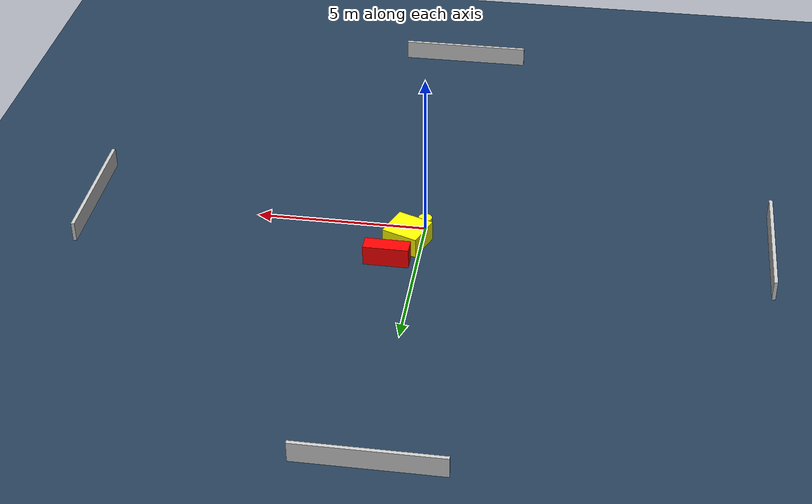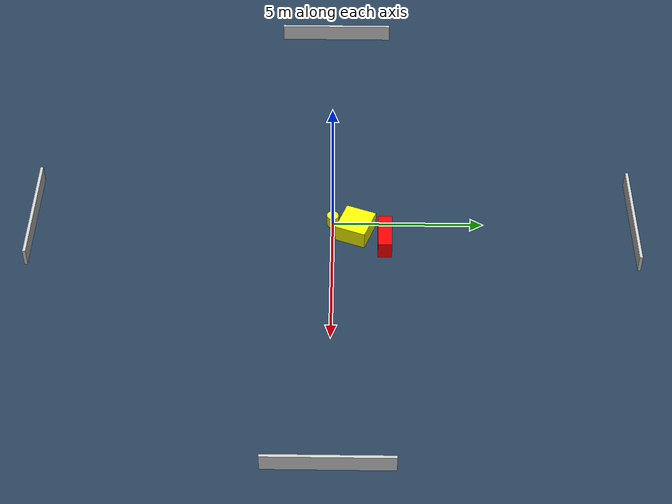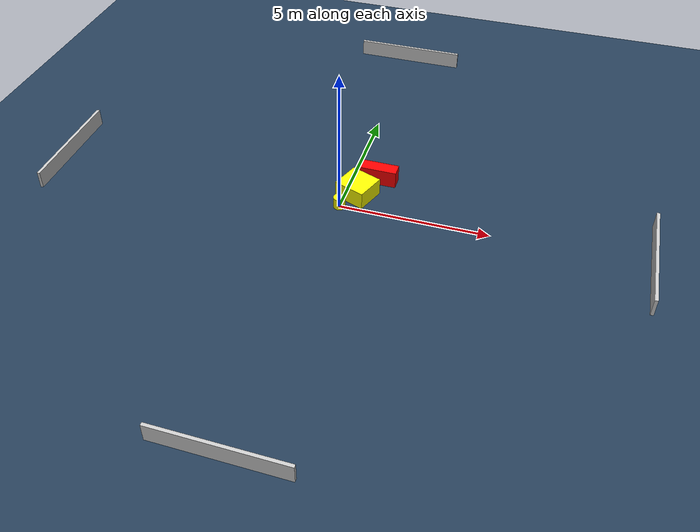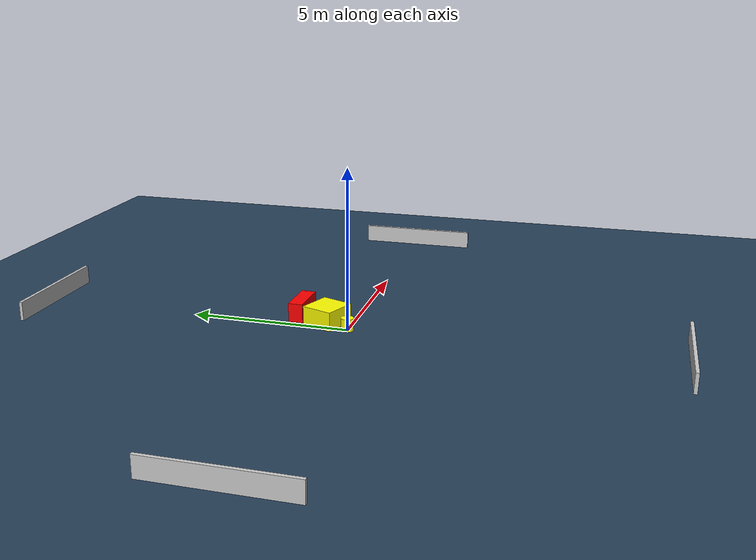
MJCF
<?xml version="1.0" ?>
<mujoco model="generated_environment">
  <option timestep="0.01" integrator="RK4" cone="elliptic"/>
  <default>
    <geom density="1"/>
  </default>
  <asset>
    <texture builtin="gradient" height="3072" name="skybox" rgb1="0.3 0.5 0.7" rgb2="0 0 0" type="skybox" width="512"/>
    <texture builtin="checker" height="300" name="groundplane" rgb1="0.2 0.3 0.4" rgb2="0.1 0.2 0.3" type="2d" width="300"/>
    <material name="groundplane" reflectance="0.2" texrepeat="5 5" texture="groundplane"/>
  </asset>
  <worldbody>
    <light dir="0 0 -1" directional="true" pos="0 0 1.5"/>
    <geom condim="3" friction="0.5 0.005 0.001" material="groundplane" name="floor" pos="0 0 0" size="0 0 0.05" type="plane"/>
    <body name="walls">
      <geom name="wall_1" condim="4" pos="-10.0 0.0 0.3" rgba="0.800000011920929 0.800000011920929 0.800000011920929 1.0" size="0.05 2.0 0.3" type="box"/>
      <geom name="wall_2" condim="4" pos="10.0 0.0 0.3" rgba="0.800000011920929 0.800000011920929 0.800000011920929 1.0" size="0.05 2.0 0.3" type="box"/>
      <geom name="wall_3" condim="4" pos="0.0 -10.0 0.3" rgba="0.800000011920929 0.800000011920929 0.800000011920929 1.0" size="2.0 0.05 0.3" type="box"/>
      <geom name="wall_4" condim="4" pos="0.0 10.0 0.3" rgba="0.800000011920929 0.800000011920929 0.800000011920929 1.0" size="2.0 0.05 0.3" type="box"/>
    </body>
    <body name="robot">
      <joint name="joint_x" type="slide" pos="0 0 0" axis="1 0 0"/>
      <joint name="joint_y" type="slide" pos="0 0 0" axis="0 1 0"/>
      <geom name="robot" type="cylinder" pos="0.0 0.0 0.2" size="0.2 0.2 0.0" mass="5.0" friction="1.0 0.005 0.0001" condim="4" rgba="1.0 1.0 0.0 1.0"/>
    </body>
    <body name="obstacle_1_movable">
      <geom name="obstacle_1_movable" condim="4" pos="0.40694001298352395 0.7656759083045879 0.3" euler="0 0 339.31609534882256" friction="0.0 0.005 0.001" rgba="1.0 1.0 0.0 1.0" size="0.5448949054415062 0.513210305293756 0.3" type="box" mass="0.1"/>
      <joint type="free"/>
    </body>
    <body name="obstacle_2_static">
      <geom name="obstacle_2_static" condim="4" pos="0.8643367336759535 1.7293233970001518 0.3" euler="0 0 89.58539208680318" friction="0.0 0.005 0.001" rgba="1.0 0.0 0.0 1.0" size="0.22986080040250725 0.6583205745460785 0.3" type="box"/>
    </body>
  </worldbody>
  <actuator>
    <motor name="actuator_x" joint="joint_x" gear="1" ctrlrange="-1 1"/>
    <motor name="actuator_y" joint="joint_y" gear="1" ctrlrange="-1 1"/>
  </actuator>
</mujoco>
